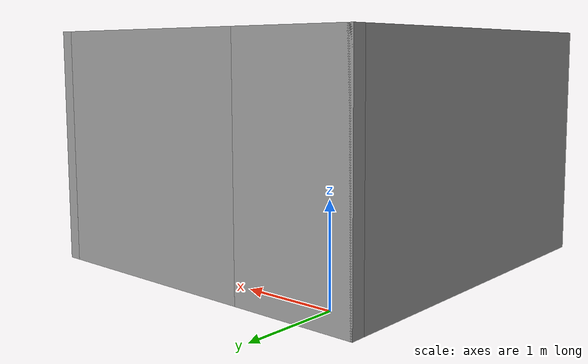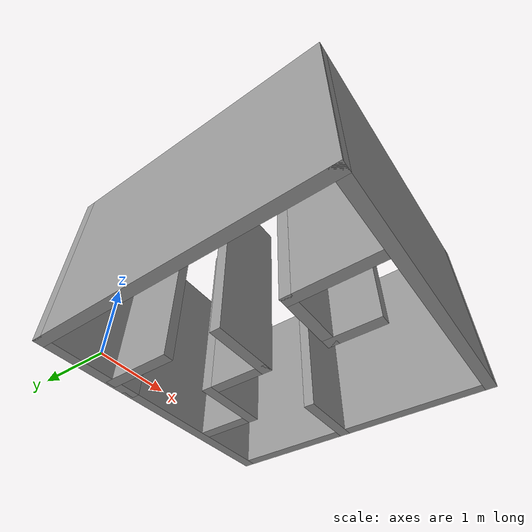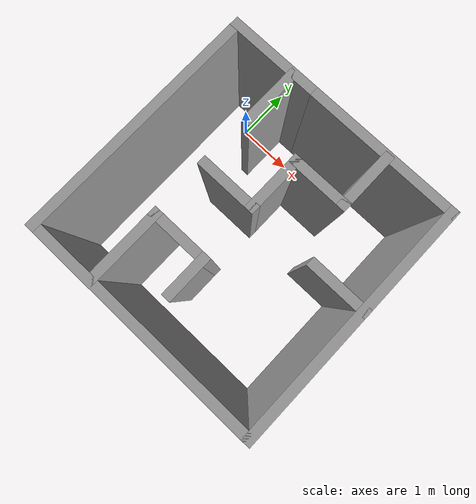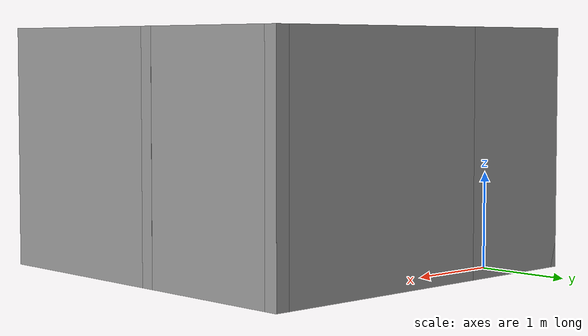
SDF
<?xml version='1.0'?>
<sdf version='1.7'>
  <model name='Maze_small'>
    <pose>1.38751 -1.54314 0 0 -0 0</pose>
    <link name='Wall_13'>
      <collision name='Wall_13_Collision'>
        <geometry>
          <box>
            <size>1.5 0.15 2.5</size>
          </box>
        </geometry>
        <pose>0 0 1.25 0 -0 0</pose>
      </collision>
      <visual name='Wall_13_Visual'>
        <pose>0 0 1.25 0 -0 0</pose>
        <geometry>
          <box>
            <size>1.5 0.15 2.5</size>
          </box>
        </geometry>
        <material>
          <script>
            <uri>file://media/materials/scripts/gazebo.material</uri>
            <name>Gazebo/Grey</name>
          </script>
          <ambient>1 1 1 1</ambient>
        </material>
        <meta>
          <layer>0</layer>
        </meta>
      </visual>
      <pose>-1.2506 1.925 0 0 -0 0</pose>
    </link>
    <link name='Wall_16'>
      <collision name='Wall_16_Collision'>
        <geometry>
          <box>
            <size>4 0.15 2.5</size>
          </box>
        </geometry>
        <pose>0 0 1.25 0 -0 0</pose>
      </collision>
      <visual name='Wall_16_Visual'>
        <pose>0 0 1.25 0 -0 0</pose>
        <geometry>
          <box>
            <size>4 0.15 2.5</size>
          </box>
        </geometry>
        <material>
          <script>
            <uri>file://media/materials/scripts/gazebo.material</uri>
            <name>Gazebo/Grey</name>
          </script>
          <ambient>1 1 1 1</ambient>
        </material>
        <meta>
          <layer>0</layer>
        </meta>
      </visual>
      <pose>-1.9256 0 0 0 -0 -1.5708</pose>
    </link>
    <link name='Wall_17'>
      <collision name='Wall_17_Collision'>
        <geometry>
          <box>
            <size>4 0.15 2.5</size>
          </box>
        </geometry>
        <pose>0 0 1.25 0 -0 0</pose>
      </collision>
      <visual name='Wall_17_Visual'>
        <pose>0 0 1.25 0 -0 0</pose>
        <geometry>
          <box>
            <size>4 0.15 2.5</size>
          </box>
        </geometry>
        <material>
          <script>
            <uri>file://media/materials/scripts/gazebo.material</uri>
            <name>Gazebo/Grey</name>
          </script>
          <ambient>1 1 1 1</ambient>
        </material>
        <meta>
          <layer>0</layer>
        </meta>
      </visual>
      <pose>-0.000601 -1.925 0 0 -0 0</pose>
    </link>
    <link name='Wall_18'>
      <collision name='Wall_18_Collision'>
        <geometry>
          <box>
            <size>4 0.15 2.5</size>
          </box>
        </geometry>
        <pose>0 0 1.25 0 -0 0</pose>
      </collision>
      <visual name='Wall_18_Visual'>
        <pose>0 0 1.25 0 -0 0</pose>
        <geometry>
          <box>
            <size>4 0.15 2.5</size>
          </box>
        </geometry>
        <material>
          <script>
            <uri>file://media/materials/scripts/gazebo.material</uri>
            <name>Gazebo/Grey</name>
          </script>
          <ambient>1 1 1 1</ambient>
        </material>
        <meta>
          <layer>0</layer>
        </meta>
      </visual>
      <pose>1.9244 0 0 0 -0 1.5708</pose>
    </link>
    <link name='Wall_19'>
      <collision name='Wall_19_Collision'>
        <geometry>
          <box>
            <size>2.65 0.15 2.5</size>
          </box>
        </geometry>
        <pose>0 0 1.25 0 -0 0</pose>
      </collision>
      <visual name='Wall_19_Visual'>
        <pose>0 0 1.25 0 -0 0</pose>
        <geometry>
          <box>
            <size>2.65 0.15 2.5</size>
          </box>
        </geometry>
        <material>
          <script>
            <uri>file://media/materials/scripts/gazebo.material</uri>
            <name>Gazebo/Grey</name>
          </script>
          <ambient>1 1 1 1</ambient>
        </material>
        <meta>
          <layer>0</layer>
        </meta>
      </visual>
      <pose>0.674399 1.925 0 0 -0 3.14159</pose>
    </link>
    <link name='Wall_21'>
      <collision name='Wall_21_Collision'>
        <geometry>
          <box>
            <size>1 0.15 2.5</size>
          </box>
        </geometry>
        <pose>0 0 1.25 0 -0 0</pose>
      </collision>
      <visual name='Wall_21_Visual'>
        <pose>0 0 1.25 0 -0 0</pose>
        <geometry>
          <box>
            <size>1 0.15 2.5</size>
          </box>
        </geometry>
        <material>
          <script>
            <uri>file://media/materials/scripts/gazebo.material</uri>
            <name>Gazebo/Grey</name>
          </script>
          <ambient>1 1 1 1</ambient>
        </material>
        <meta>
          <layer>0</layer>
        </meta>
      </visual>
      <pose>-0.874399 1.46688 0 0 -0 -1.5708</pose>
    </link>
    <link name='Wall_27'>
      <collision name='Wall_27_Collision'>
        <geometry>
          <box>
            <size>1 0.15 2.5</size>
          </box>
        </geometry>
        <pose>0 0 1.25 0 -0 0</pose>
      </collision>
      <visual name='Wall_27_Visual'>
        <pose>0 0 1.25 0 -0 0</pose>
        <geometry>
          <box>
            <size>1 0.15 2.5</size>
          </box>
        </geometry>
        <material>
          <script>
            <uri>file://media/materials/scripts/gazebo.material</uri>
            <name>Gazebo/Grey</name>
          </script>
          <ambient>1 1 1 1</ambient>
        </material>
        <meta>
          <layer>0</layer>
        </meta>
      </visual>
      <pose>0.825601 1.46688 0 0 -0 1.5708</pose>
    </link>
    <link name='Wall_32'>
      <collision name='Wall_32_Collision'>
        <geometry>
          <box>
            <size>1 0.15 2.5</size>
          </box>
        </geometry>
        <pose>0 0 1.25 0 -0 0</pose>
      </collision>
      <visual name='Wall_32_Visual'>
        <pose>0 0 1.25 0 -0 0</pose>
        <geometry>
          <box>
            <size>1 0.15 2.5</size>
          </box>
        </geometry>
        <material>
          <script>
            <uri>file://media/materials/scripts/gazebo.material</uri>
            <name>Gazebo/Grey</name>
          </script>
          <ambient>1 1 1 1</ambient>
        </material>
        <meta>
          <layer>0</layer>
        </meta>
      </visual>
      <pose>0.400601 1.04188 0 0 -0 3.14159</pose>
    </link>
    <link name='Wall_39'>
      <collision name='Wall_39_Collision'>
        <geometry>
          <box>
            <size>0.990056 0.15 2.5</size>
          </box>
        </geometry>
        <pose>0 0 1.25 0 -0 0</pose>
      </collision>
      <visual name='Wall_39_Visual'>
        <pose>0 0 1.25 0 -0 0</pose>
        <geometry>
          <box>
            <size>0.990056 0.15 2.5</size>
          </box>
        </geometry>
        <material>
          <script>
            <uri>file://media/materials/scripts/gazebo.material</uri>
            <name>Gazebo/Grey</name>
          </script>
          <ambient>1 1 1 1</ambient>
        </material>
        <meta>
          <layer>0</layer>
        </meta>
      </visual>
      <pose>-0.024399 0.621856 0 0 -0 -1.5708</pose>
    </link>
    <link name='Wall_40'>
      <collision name='Wall_40_Collision'>
        <geometry>
          <box>
            <size>1 0.15 2.5</size>
          </box>
        </geometry>
        <pose>0 0 1.25 0 -0 0</pose>
      </collision>
      <visual name='Wall_40_Visual'>
        <pose>0 0 1.25 0 -0 0</pose>
        <geometry>
          <box>
            <size>1 0.15 2.5</size>
          </box>
        </geometry>
        <material>
          <script>
            <uri>file://media/materials/scripts/gazebo.material</uri>
            <name>Gazebo/Grey</name>
          </script>
          <ambient>1 1 1 1</ambient>
        </material>
        <meta>
          <layer>0</layer>
        </meta>
      </visual>
      <pose>-0.449399 0.196856 0 0 -0 3.14159</pose>
    </link>
    <link name='Wall_45'>
      <collision name='Wall_45_Collision'>
        <geometry>
          <box>
            <size>1 0.15 2.5</size>
          </box>
        </geometry>
        <pose>0 0 1.25 0 -0 0</pose>
      </collision>
      <visual name='Wall_45_Visual'>
        <pose>0 0 1.25 0 -0 0</pose>
        <geometry>
          <box>
            <size>1 0.15 2.5</size>
          </box>
        </geometry>
        <material>
          <script>
            <uri>file://media/materials/scripts/gazebo.material</uri>
            <name>Gazebo/Grey</name>
          </script>
          <ambient>1 1 1 1</ambient>
        </material>
        <meta>
          <layer>0</layer>
        </meta>
      </visual>
      <pose>1.5006 0.191884 0 0 -0 0</pose>
    </link>
    <link name='Wall_49'>
      <collision name='Wall_49_Collision'>
        <geometry>
          <box>
            <size>1.00986 0.15 2.5</size>
          </box>
        </geometry>
        <pose>0 0 1.25 0 -0 0</pose>
      </collision>
      <visual name='Wall_49_Visual'>
        <pose>0 0 1.25 0 -0 0</pose>
        <geometry>
          <box>
            <size>1.00986 0.15 2.5</size>
          </box>
        </geometry>
        <material>
          <script>
            <uri>file://media/materials/scripts/gazebo.material</uri>
            <name>Gazebo/Grey</name>
          </script>
          <ambient>1 1 1 1</ambient>
        </material>
        <meta>
          <layer>0</layer>
        </meta>
      </visual>
      <pose>-0.440494 -0.734491 0 0 -0 0.00041</pose>
    </link>
    <link name='Wall_51'>
      <collision name='Wall_51_Collision'>
        <geometry>
          <box>
            <size>1.3396 0.15 2.5</size>
          </box>
        </geometry>
        <pose>0 0 1.25 0 -0 0</pose>
      </collision>
      <visual name='Wall_51_Visual'>
        <pose>0 0 1.25 0 -0 0</pose>
        <geometry>
          <box>
            <size>1.3396 0.15 2.5</size>
          </box>
        </geometry>
        <material>
          <script>
            <uri>file://media/materials/scripts/gazebo.material</uri>
            <name>Gazebo/Grey</name>
          </script>
          <ambient>1 1 1 1</ambient>
        </material>
        <meta>
          <layer>0</layer>
        </meta>
      </visual>
      <pose>-0.870159 -1.32947 0 0 -0 -1.5708</pose>
    </link>
    <link name='Wall_53'>
      <collision name='Wall_53_Collision'>
        <geometry>
          <box>
            <size>0.761465 0.15 2.5</size>
          </box>
        </geometry>
        <pose>0 0 1.25 0 -0 0</pose>
      </collision>
      <visual name='Wall_53_Visual'>
        <pose>0 0 1.25 0 -0 0</pose>
        <geometry>
          <box>
            <size>0.761465 0.15 2.5</size>
          </box>
        </geometry>
        <material>
          <script>
            <uri>file://media/materials/scripts/gazebo.material</uri>
            <name>Gazebo/Grey</name>
          </script>
          <ambient>1 1 1 1</ambient>
        </material>
        <meta>
          <layer>0</layer>
        </meta>
      </visual>
      <pose>-0.01083 -1.04005 0 0 -0 -1.5708</pose>
    </link>
    <static>1</static>
  </model>
</sdf>
